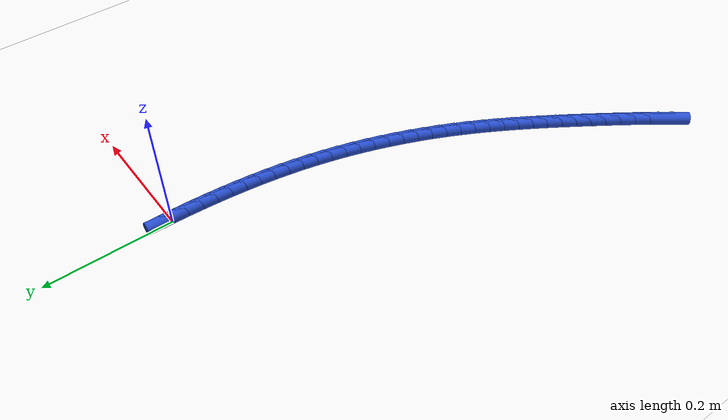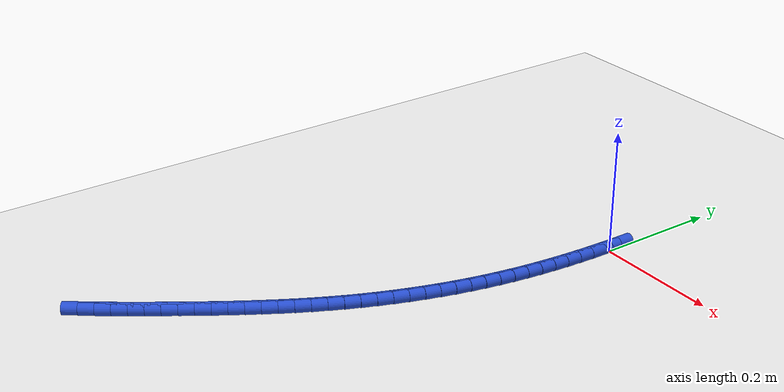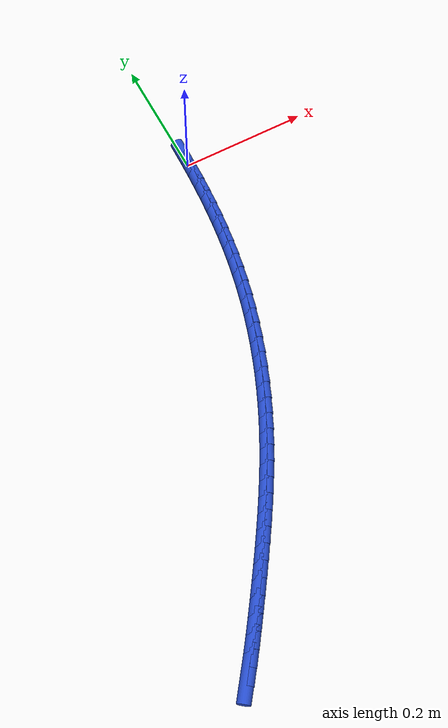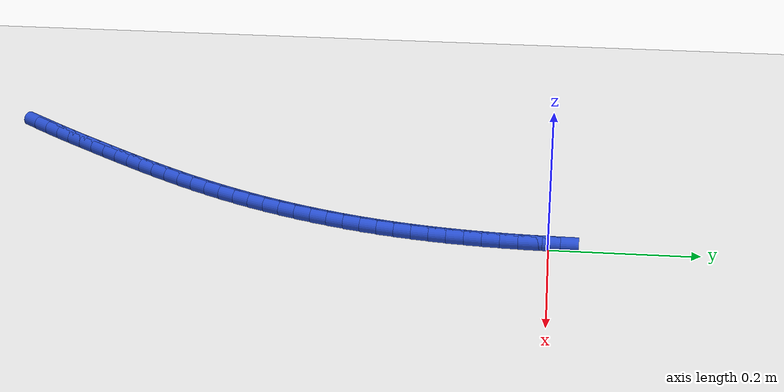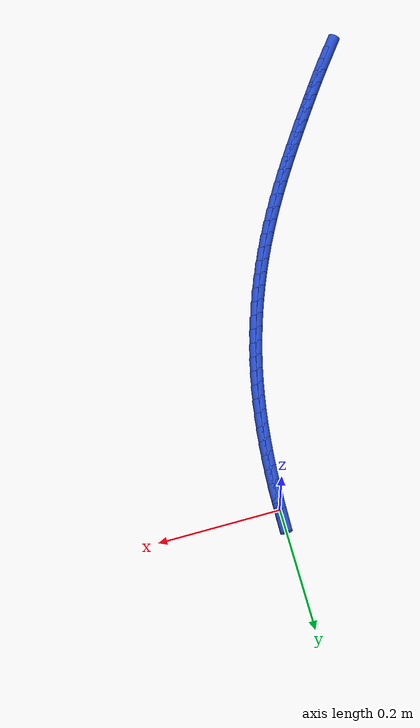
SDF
<sdf version="1.6">
 <world name="default">
  <model name="ground_plane">
   <static>1</static>
   <link name="link">
    <collision name="collision">
     <geometry><plane><normal>0 0 1</normal><size>100 100</size></plane></geometry>
     <surface><friction><ode><mu>100</mu><mu2>50</mu2></ode></friction></surface>
    </collision>
    <visual name="visual">
     <cast_shadows>0</cast_shadows>
     <geometry><plane><normal>0 0 1</normal><size>100 100</size></plane></geometry>
     <material>
      <script><uri>file://media/materials/scripts/gazebo.material</uri><name>Gazebo/WhiteGlow</name></script>
     </material>
    </visual>
   </link>
  </model>
  <model name="line">
   <link name="link_246">
    <pose>-0.2908779114904805 -0.7344407292315153 0.01 0 1.57 0.9264353114630532</pose>
    <collision name="collision">
     <geometry><cylinder><radius>0.01</radius><length>0.08</length></cylinder></geometry>
    </collision>
    <visual name="visual">
     <material>
      <script><name>Gazebo/Blue</name><uri>file://media/materials/scripts/gazebo.material</uri></script>
     </material>
     <geometry><cylinder><radius>0.01</radius><length>0.08</length></cylinder></geometry>
    </visual>
   </link>
   <link name="link_247">
    <pose>-0.2765547584966027 -0.7153773654359132 0.01 0 1.57 0.9421728599021588</pose>
    <collision name="collision">
     <geometry><cylinder><radius>0.01</radius><length>0.08</length></cylinder></geometry>
    </collision>
    <visual name="visual">
     <material>
      <script><name>Gazebo/Blue</name><uri>file://media/materials/scripts/gazebo.material</uri></script>
     </material>
     <geometry><cylinder><radius>0.01</radius><length>0.08</length></cylinder></geometry>
    </visual>
   </link>
   <link name="link_248">
    <pose>-0.26251589192147856 -0.6960669090220188 0.01 0 1.57 0.9543853912358805</pose>
    <collision name="collision">
     <geometry><cylinder><radius>0.01</radius><length>0.08</length></cylinder></geometry>
    </collision>
    <visual name="visual">
     <material>
      <script><name>Gazebo/Blue</name><uri>file://media/materials/scripts/gazebo.material</uri></script>
     </material>
     <geometry><cylinder><radius>0.01</radius><length>0.08</length></cylinder></geometry>
    </visual>
   </link>
   <link name="link_249">
    <pose>-0.24870819549350798 -0.6765784010403788 0.01 0 1.57 0.9631117278930917</pose>
    <collision name="collision">
     <geometry><cylinder><radius>0.01</radius><length>0.08</length></cylinder></geometry>
    </collision>
    <visual name="visual">
     <material>
      <script><name>Gazebo/Blue</name><uri>file://media/materials/scripts/gazebo.material</uri></script>
     </material>
     <geometry><cylinder><radius>0.01</radius><length>0.08</length></cylinder></geometry>
    </visual>
   </link>
   <link name="link_250">
    <pose>-0.23507855294109098 -0.6569808825415404 0.01 0 1.57 0.9685872994684185</pose>
    <collision name="collision">
     <geometry><cylinder><radius>0.01</radius><length>0.08</length></cylinder></geometry>
    </collision>
    <visual name="visual">
     <material>
      <script><name>Gazebo/Blue</name><uri>file://media/materials/scripts/gazebo.material</uri></script>
     </material>
     <geometry><cylinder><radius>0.01</radius><length>0.08</length></cylinder></geometry>
    </visual>
   </link>
   <link name="link_251">
    <pose>-0.22157743036244504 -0.6373395911697971 0.01 0 1.57 0.9737634698331924</pose>
    <collision name="collision">
     <geometry><cylinder><radius>0.01</radius><length>0.08</length></cylinder></geometry>
    </collision>
    <visual name="visual">
     <material>
      <script><name>Gazebo/Blue</name><uri>file://media/materials/scripts/gazebo.material</uri></script>
     </material>
     <geometry><cylinder><radius>0.01</radius><length>0.08</length></cylinder></geometry>
    </visual>
   </link>
   <link name="link_252">
    <pose>-0.2082045349023558 -0.617667485292318 0.01 0 1.57 0.9807893044419173</pose>
    <collision name="collision">
     <geometry><cylinder><radius>0.01</radius><length>0.08</length></cylinder></geometry>
    </collision>
    <visual name="visual">
     <material>
      <script><name>Gazebo/Blue</name><uri>file://media/materials/scripts/gazebo.material</uri></script>
     </material>
     <geometry><cylinder><radius>0.01</radius><length>0.08</length></cylinder></geometry>
    </visual>
   </link>
   <link name="link_253">
    <pose>-0.19499536566666079 -0.5979395229090801 0.01 0 1.57 0.9897221047535176</pose>
    <collision name="collision">
     <geometry><cylinder><radius>0.01</radius><length>0.08</length></cylinder></geometry>
    </collision>
    <visual name="visual">
     <material>
      <script><name>Gazebo/Blue</name><uri>file://media/materials/scripts/gazebo.material</uri></script>
     </material>
     <geometry><cylinder><radius>0.01</radius><length>0.08</length></cylinder></geometry>
    </visual>
   </link>
   <link name="link_254">
    <pose>-0.18198622821331906 -0.5781298058088911 0.01 0 1.57 1.0005688781693147</pose>
    <collision name="collision">
     <geometry><cylinder><radius>0.01</radius><length>0.08</length></cylinder></geometry>
    </collision>
    <visual name="visual">
     <material>
      <script><name>Gazebo/Blue</name><uri>file://media/materials/scripts/gazebo.material</uri></script>
     </material>
     <geometry><cylinder><radius>0.01</radius><length>0.08</length></cylinder></geometry>
    </visual>
   </link>
   <link name="link_255">
    <pose>-0.16921342810028994 -0.5582124357805585 0.01 0 1.57 1.0133335692893515</pose>
    <collision name="collision">
     <geometry><cylinder><radius>0.01</radius><length>0.08</length></cylinder></geometry>
    </collision>
    <visual name="visual">
     <material>
      <script><name>Gazebo/Blue</name><uri>file://media/materials/scripts/gazebo.material</uri></script>
     </material>
     <geometry><cylinder><radius>0.01</radius><length>0.08</length></cylinder></geometry>
    </visual>
   </link>
   <link name="link_256">
    <pose>-0.15671327088553294 -0.5381615146128905 0.01 0 1.57 1.0280158419379826</pose>
    <collision name="collision">
     <geometry><cylinder><radius>0.01</radius><length>0.08</length></cylinder></geometry>
    </collision>
    <visual name="visual">
     <material>
      <script><name>Gazebo/Blue</name><uri>file://media/materials/scripts/gazebo.material</uri></script>
     </material>
     <geometry><cylinder><radius>0.01</radius><length>0.08</length></cylinder></geometry>
    </visual>
   </link>
   <link name="link_257">
    <pose>-0.1445220621270074 -0.5179511440946951 0.01 0 1.57 1.0446096567001921</pose>
    <collision name="collision">
     <geometry><cylinder><radius>0.01</radius><length>0.08</length></cylinder></geometry>
    </collision>
    <visual name="visual">
     <material>
      <script><name>Gazebo/Blue</name><uri>file://media/materials/scripts/gazebo.material</uri></script>
     </material>
     <geometry><cylinder><radius>0.01</radius><length>0.08</length></cylinder></geometry>
    </visual>
   </link>
   <link name="link_258">
    <pose>-0.1326761073826728 -0.4975554260147805 0.01 0 1.57 1.0631016674641771</pose>
    <collision name="collision">
     <geometry><cylinder><radius>0.01</radius><length>0.08</length></cylinder></geometry>
    </collision>
    <visual name="visual">
     <material>
      <script><name>Gazebo/Blue</name><uri>file://media/materials/scripts/gazebo.material</uri></script>
     </material>
     <geometry><cylinder><radius>0.01</radius><length>0.08</length></cylinder></geometry>
    </visual>
   </link>
   <link name="link_259">
    <pose>-0.12121171221048846 -0.47694846216195413 0.01 0 1.57 1.0834694757752248</pose>
    <collision name="collision">
     <geometry><cylinder><radius>0.01</radius><length>0.08</length></cylinder></geometry>
    </collision>
    <visual name="visual">
     <material>
      <script><name>Gazebo/Blue</name><uri>file://media/materials/scripts/gazebo.material</uri></script>
     </material>
     <geometry><cylinder><radius>0.01</radius><length>0.08</length></cylinder></geometry>
    </visual>
   </link>
   <link name="link_260">
    <pose>-0.11016518216841385 -0.4561043543250243 0.01 0 1.57 1.105679800410386</pose>
    <collision name="collision">
     <geometry><cylinder><radius>0.01</radius><length>0.08</length></cylinder></geometry>
    </collision>
    <visual name="visual">
     <material>
      <script><name>Gazebo/Blue</name><uri>file://media/materials/scripts/gazebo.material</uri></script>
     </material>
     <geometry><cylinder><radius>0.01</radius><length>0.08</length></cylinder></geometry>
    </visual>
   </link>
   <link name="link_261">
    <pose>-0.09957282281440807 -0.4349972042927983 0.01 0 1.57 1.1294357939313562</pose>
    <collision name="collision">
     <geometry><cylinder><radius>0.01</radius><length>0.08</length></cylinder></geometry>
    </collision>
    <visual name="visual">
     <material>
      <script><name>Gazebo/Blue</name><uri>file://media/materials/scripts/gazebo.material</uri></script>
     </material>
     <geometry><cylinder><radius>0.01</radius><length>0.08</length></cylinder></geometry>
    </visual>
   </link>
   <link name="link_262">
    <pose>-0.08946757690949438 -0.41360789037705614 0.01 0 1.57 1.1535452151814267</pose>
    <collision name="collision">
     <geometry><cylinder><radius>0.01</radius><length>0.08</length></cylinder></geometry>
    </collision>
    <visual name="visual">
     <material>
      <script><name>Gazebo/Blue</name><uri>file://media/materials/scripts/gazebo.material</uri></script>
     </material>
     <geometry><cylinder><radius>0.01</radius><length>0.08</length></cylinder></geometry>
    </visual>
   </link>
   <link name="link_263">
    <pose>-0.07986664295551338 -0.39194901785258063 0.01 0 1.57 1.1777062008808992</pose>
    <collision name="collision">
     <geometry><cylinder><radius>0.01</radius><length>0.08</length></cylinder></geometry>
    </collision>
    <visual name="visual">
     <material>
      <script><name>Gazebo/Blue</name><uri>file://media/materials/scripts/gazebo.material</uri></script>
     </material>
     <geometry><cylinder><radius>0.01</radius><length>0.08</length></cylinder></geometry>
    </visual>
   </link>
   <link name="link_264">
    <pose>-0.07078261563855365 -0.3700424693498162 0.01 0 1.57 1.2019669626782492</pose>
    <collision name="collision">
     <geometry><cylinder><radius>0.01</radius><length>0.08</length></cylinder></geometry>
    </collision>
    <visual name="visual">
     <material>
      <script><name>Gazebo/Blue</name><uri>file://media/materials/scripts/gazebo.material</uri></script>
     </material>
     <geometry><cylinder><radius>0.01</radius><length>0.08</length></cylinder></geometry>
    </visual>
   </link>
   <link name="link_265">
    <pose>-0.06222808907655717 -0.3479101286441055 0.01 0 1.57 1.2263754474218245</pose>
    <collision name="collision">
     <geometry><cylinder><radius>0.01</radius><length>0.08</length></cylinder></geometry>
    </collision>
    <visual name="visual">
     <material>
      <script><name>Gazebo/Blue</name><uri>file://media/materials/scripts/gazebo.material</uri></script>
     </material>
     <geometry><cylinder><radius>0.01</radius><length>0.08</length></cylinder></geometry>
    </visual>
   </link>
   <link name="link_266">
    <pose>-0.054215657387465956 -0.32557387951079036 0.01 0 1.57 1.2509793886117966</pose>
    <collision name="collision">
     <geometry><cylinder><radius>0.01</radius><length>0.08</length></cylinder></geometry>
    </collision>
    <visual name="visual">
     <material>
      <script><name>Gazebo/Blue</name><uri>file://media/materials/scripts/gazebo.material</uri></script>
     </material>
     <geometry><cylinder><radius>0.01</radius><length>0.08</length></cylinder></geometry>
    </visual>
   </link>
   <link name="link_267">
    <pose>-0.046757914689222045 -0.30305560572521345 0.01 0 1.57 1.2758263825132643</pose>
    <collision name="collision">
     <geometry><cylinder><radius>0.01</radius><length>0.08</length></cylinder></geometry>
    </collision>
    <visual name="visual">
     <material>
      <script><name>Gazebo/Blue</name><uri>file://media/materials/scripts/gazebo.material</uri></script>
     </material>
     <geometry><cylinder><radius>0.01</radius><length>0.08</length></cylinder></geometry>
    </visual>
   </link>
   <link name="link_268">
    <pose>-0.039867455099767427 -0.2803771910627171 0.01 0 1.57 1.3009639427988566</pose>
    <collision name="collision">
     <geometry><cylinder><radius>0.01</radius><length>0.08</length></cylinder></geometry>
    </collision>
    <visual name="visual">
     <material>
      <script><name>Gazebo/Blue</name><uri>file://media/materials/scripts/gazebo.material</uri></script>
     </material>
     <geometry><cylinder><radius>0.01</radius><length>0.08</length></cylinder></geometry>
    </visual>
   </link>
   <link name="link_269">
    <pose>-0.033556872737044115 -0.25756051929864343 0.01 0 1.57 1.3264395295387148</pose>
    <collision name="collision">
     <geometry><cylinder><radius>0.01</radius><length>0.08</length></cylinder></geometry>
    </collision>
    <visual name="visual">
     <material>
      <script><name>Gazebo/Blue</name><uri>file://media/materials/scripts/gazebo.material</uri></script>
     </material>
     <geometry><cylinder><radius>0.01</radius><length>0.08</length></cylinder></geometry>
    </visual>
   </link>
   <link name="link_270">
    <pose>-0.027838761718993958 -0.23462747420833416 0.01 0 1.57 1.3522736780466413</pose>
    <collision name="collision">
     <geometry><cylinder><radius>0.01</radius><length>0.08</length></cylinder></geometry>
    </collision>
    <visual name="visual">
     <material>
      <script><name>Gazebo/Blue</name><uri>file://media/materials/scripts/gazebo.material</uri></script>
     </material>
     <geometry><cylinder><radius>0.01</radius><length>0.08</length></cylinder></geometry>
    </visual>
   </link>
   <link name="link_271">
    <pose>-0.02272496382356939 -0.21159947535968823 0.01 0 1.57 1.3777914819820445</pose>
    <collision name="collision">
     <geometry><cylinder><radius>0.01</radius><length>0.08</length></cylinder></geometry>
    </collision>
    <visual name="visual">
     <material>
      <script><name>Gazebo/Blue</name><uri>file://media/materials/scripts/gazebo.material</uri></script>
     </material>
     <geometry><cylinder><radius>0.01</radius><length>0.08</length></cylinder></geometry>
    </visual>
   </link>
   <link name="link_272">
    <pose>-0.01820768729782685 -0.18848582807527267 0.01 0 1.57 1.4021939874077327</pose>
    <collision name="collision">
     <geometry><cylinder><radius>0.01</radius><length>0.08</length></cylinder></geometry>
    </collision>
    <visual name="visual">
     <material>
      <script><name>Gazebo/Blue</name><uri>file://media/materials/scripts/gazebo.material</uri></script>
     </material>
     <geometry><cylinder><radius>0.01</radius><length>0.08</length></cylinder></geometry>
    </visual>
   </link>
   <link name="link_273">
    <pose>-0.014258118118059701 -0.16528286655459196 0.01 0 1.57 1.4253833097931303</pose>
    <collision name="collision">
     <geometry><cylinder><radius>0.01</radius><length>0.08</length></cylinder></geometry>
    </collision>
    <visual name="visual">
     <material>
      <script><name>Gazebo/Blue</name><uri>file://media/materials/scripts/gazebo.material</uri></script>
     </material>
     <geometry><cylinder><radius>0.01</radius><length>0.08</length></cylinder></geometry>
    </visual>
   </link>
   <link name="link_274">
    <pose>-0.010846411765851256 -0.14198628916318884 0.01 0 1.57 1.447309430832043</pose>
    <collision name="collision">
     <geometry><cylinder><radius>0.01</radius><length>0.08</length></cylinder></geometry>
    </collision>
    <visual name="visual">
     <material>
      <script><name>Gazebo/Blue</name><uri>file://media/materials/scripts/gazebo.material</uri></script>
     </material>
     <geometry><cylinder><radius>0.01</radius><length>0.08</length></cylinder></geometry>
    </visual>
   </link>
   <link name="link_275">
    <pose>-0.007942723722784852 -0.11859179426660625 0.01 0 1.57 1.4679328580697109</pose>
    <collision name="collision">
     <geometry><cylinder><radius>0.01</radius><length>0.08</length></cylinder></geometry>
    </collision>
    <visual name="visual">
     <material>
      <script><name>Gazebo/Blue</name><uri>file://media/materials/scripts/gazebo.material</uri></script>
     </material>
     <geometry><cylinder><radius>0.01</radius><length>0.08</length></cylinder></geometry>
    </visual>
   </link>
   <link name="link_276">
    <pose>-0.005517209470443821 -0.09509508023038703 0.01 0 1.57 1.487223895600362</pose>
    <collision name="collision">
     <geometry><cylinder><radius>0.01</radius><length>0.08</length></cylinder></geometry>
    </collision>
    <visual name="visual">
     <material>
      <script><name>Gazebo/Blue</name><uri>file://media/materials/scripts/gazebo.material</uri></script>
     </material>
     <geometry><cylinder><radius>0.01</radius><length>0.08</length></cylinder></geometry>
    </visual>
   </link>
   <link name="link_277">
    <pose>-0.0035400244904114937 -0.071491845420074 0.01 0 1.57 1.5051617822483123</pose>
    <collision name="collision">
     <geometry><cylinder><radius>0.01</radius><length>0.08</length></cylinder></geometry>
    </collision>
    <visual name="visual">
     <material>
      <script><name>Gazebo/Blue</name><uri>file://media/materials/scripts/gazebo.material</uri></script>
     </material>
     <geometry><cylinder><radius>0.01</radius><length>0.08</length></cylinder></geometry>
    </visual>
   </link>
   <link name="link_278">
    <pose>-0.0019813242642711983 -0.04777778820121006 0.01 0 1.57 1.5217337511311184</pose>
    <collision name="collision">
     <geometry><cylinder><radius>0.01</radius><length>0.08</length></cylinder></geometry>
    </collision>
    <visual name="visual">
     <material>
      <script><name>Gazebo/Blue</name><uri>file://media/materials/scripts/gazebo.material</uri></script>
     </material>
     <geometry><cylinder><radius>0.01</radius><length>0.08</length></cylinder></geometry>
    </visual>
   </link>
   <link name="link_279">
    <pose>-0.0008112642736062369 -0.023948606939337334 0.01 0 1.57 1.5369340577975488</pose>
    <collision name="collision">
     <geometry><cylinder><radius>0.01</radius><length>0.08</length></cylinder></geometry>
    </collision>
    <visual name="visual">
     <material>
      <script><name>Gazebo/Blue</name><uri>file://media/materials/scripts/gazebo.material</uri></script>
     </material>
     <geometry><cylinder><radius>0.01</radius><length>0.08</length></cylinder></geometry>
    </visual>
   </link>
   <link name="link_280">
    <pose>-1.22514845490862e-17 -1.1796119636642288e-16 0.01 0 1.57 1.550763016132114</pose>
    <collision name="collision">
     <geometry><cylinder><radius>0.01</radius><length>0.08</length></cylinder></geometry>
    </collision>
    <visual name="visual">
     <material>
      <script><name>Gazebo/Blue</name><uri>file://media/materials/scripts/gazebo.material</uri></script>
     </material>
     <geometry><cylinder><radius>0.01</radius><length>0.08</length></cylinder></geometry>
    </visual>
   </link>
  </model>
 </world>
</sdf>
